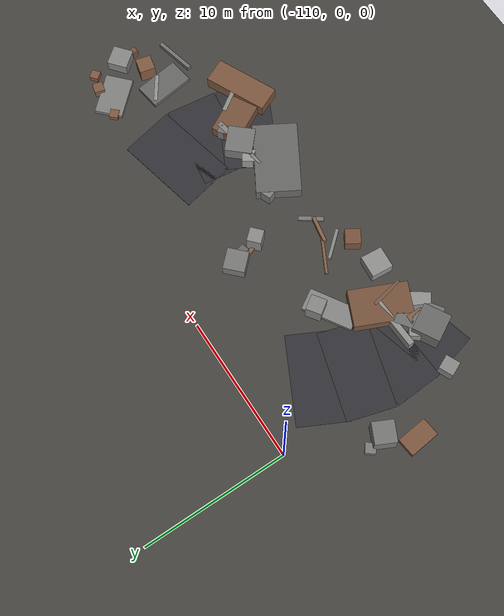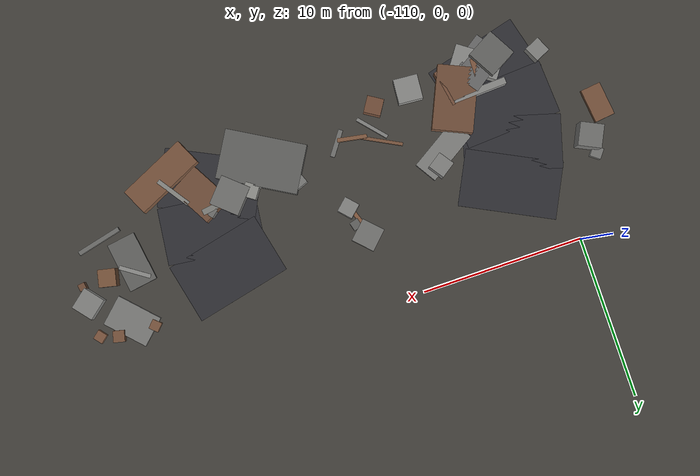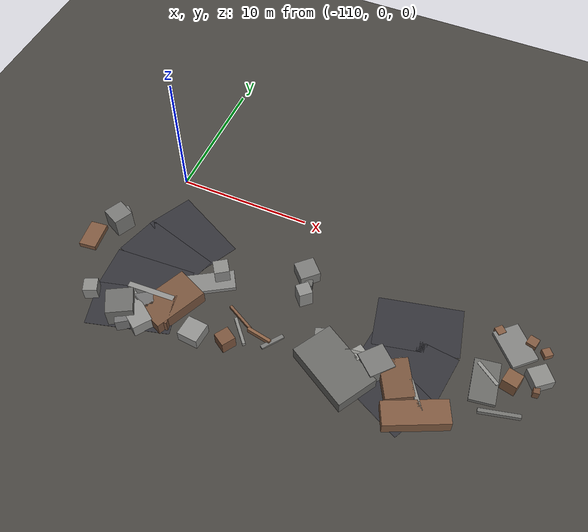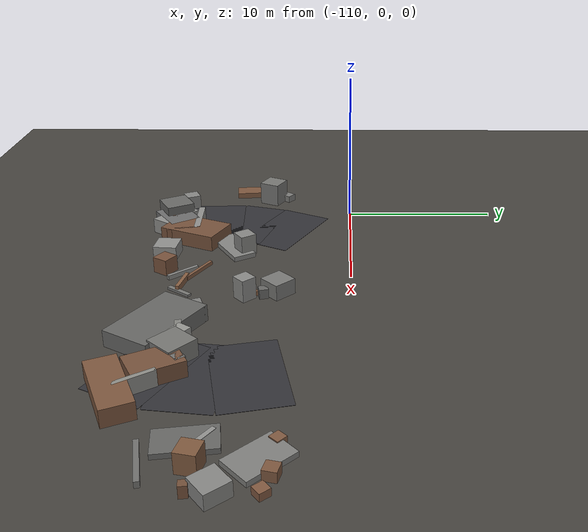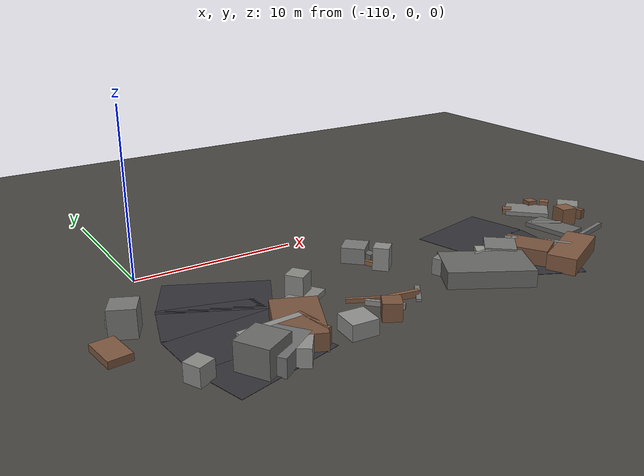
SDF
<sdf version="1.6">
 <world name="navitas_arena">
  <model name="ground_plane">
   <static>true</static>
   <link name="link">
    <collision name="collision">
     <geometry><plane><normal>0 0 1</normal><size>400 400</size></plane></geometry>
     <surface><friction><ode><mu>0.820</mu><mu2>0.820</mu2></ode></friction></surface>
    </collision>
    <visual name="visual">
     <cast_shadows>false</cast_shadows>
     <geometry><plane><normal>0 0 1</normal><size>400 400</size></plane></geometry>
     <material><ambient>0.280 0.270 0.250 1</ambient><diffuse>0.280 0.270 0.250 1</diffuse></material>
    </visual>
   </link>
  </model>
  <model name="road_kolay_1_6">
   <static>true</static>
   <pose>-107.912 -11.639 0.040 0 0 1.829</pose>
   <link name="link">
    <collision name="col"><geometry><box><size>3.409 6.000 0.020</size></box></geometry></collision>
    <visual name="vis">
     <geometry><box><size>3.409 6.000 0.020</size></box></geometry>
     <material><ambient>0.20 0.20 0.22 1</ambient><diffuse>0.20 0.20 0.22 1</diffuse></material>
    </visual>
   </link>
  </model>
  <model name="road_kolay_1_7">
   <static>true</static>
   <pose>-108.301 -9.213 0.040 0 0 1.628</pose>
   <link name="link">
    <collision name="col"><geometry><box><size>3.330 6.000 0.020</size></box></geometry></collision>
    <visual name="vis">
     <geometry><box><size>3.330 6.000 0.020</size></box></geometry>
     <material><ambient>0.20 0.20 0.22 1</ambient><diffuse>0.20 0.20 0.22 1</diffuse></material>
    </visual>
   </link>
  </model>
  <model name="road_kolay_1_8">
   <static>true</static>
   <pose>-108.031 -6.833 0.040 0 0 1.288</pose>
   <link name="link">
    <collision name="col"><geometry><box><size>3.330 6.000 0.020</size></box></geometry></collision>
    <visual name="vis">
     <geometry><box><size>3.330 6.000 0.020</size></box></geometry>
     <material><ambient>0.20 0.20 0.22 1</ambient><diffuse>0.20 0.20 0.22 1</diffuse></material>
    </visual>
   </link>
  </model>
  <model name="road_kolay_1_9">
   <static>true</static>
   <pose>-107.102 -4.500 0.040 0 0 1.102</pose>
   <link name="link">
    <collision name="col"><geometry><box><size>3.515 6.000 0.020</size></box></geometry></collision>
    <visual name="vis">
     <geometry><box><size>3.515 6.000 0.020</size></box></geometry>
     <material><ambient>0.20 0.20 0.22 1</ambient><diffuse>0.20 0.20 0.22 1</diffuse></material>
    </visual>
   </link>
  </model>
  <model name="road_kolay_2_4">
   <static>true</static>
   <pose>-89.827 -10.426 0.040 0 0 1.113</pose>
   <link name="link">
    <collision name="col"><geometry><box><size>3.642 6.000 0.020</size></box></geometry></collision>
    <visual name="vis">
     <geometry><box><size>3.642 6.000 0.020</size></box></geometry>
     <material><ambient>0.20 0.20 0.22 1</ambient><diffuse>0.20 0.20 0.22 1</diffuse></material>
    </visual>
   </link>
  </model>
  <model name="road_kolay_2_5">
   <static>true</static>
   <pose>-89.065 -7.898 0.040 0 0 1.451</pose>
   <link name="link">
    <collision name="col"><geometry><box><size>3.514 6.000 0.020</size></box></geometry></collision>
    <visual name="vis">
     <geometry><box><size>3.514 6.000 0.020</size></box></geometry>
     <material><ambient>0.20 0.20 0.22 1</ambient><diffuse>0.20 0.20 0.22 1</diffuse></material>
    </visual>
   </link>
  </model>
  <model name="road_kolay_2_6">
   <static>true</static>
   <pose>-89.223 -5.200 0.040 0 0 1.792</pose>
   <link name="link">
    <collision name="col"><geometry><box><size>3.770 6.000 0.020</size></box></geometry></collision>
    <visual name="vis">
     <geometry><box><size>3.770 6.000 0.020</size></box></geometry>
     <material><ambient>0.20 0.20 0.22 1</ambient><diffuse>0.20 0.20 0.22 1</diffuse></material>
    </visual>
   </link>
  </model>
  <model name="blk_kolay_1_0_0">
   <static>true</static>
   <pose>-107.466 -12.030 0.500 0 0 0.603</pose>
   <link name="link">
    <collision name="col"><geometry><box><size>2.747 2.083 1.000</size></box></geometry></collision>
    <visual name="vis">
     <geometry><box><size>2.747 2.083 1.000</size></box></geometry>
     <material><ambient>0.44 0.44 0.44 1</ambient><diffuse>0.44 0.44 0.44 1</diffuse></material>
    </visual>
   </link>
  </model>
  <model name="blk_kolay_1_0_2">
   <static>true</static>
   <pose>-105.107 -11.199 0.500 0 0 1.743</pose>
   <link name="link">
    <collision name="col"><geometry><box><size>2.251 0.246 1.000</size></box></geometry></collision>
    <visual name="vis">
     <geometry><box><size>2.251 0.246 1.000</size></box></geometry>
     <material><ambient>0.49 0.34 0.25 1</ambient><diffuse>0.49 0.34 0.25 1</diffuse></material>
    </visual>
   </link>
  </model>
  <model name="blk_kolay_1_0_3">
   <static>true</static>
   <pose>-107.616 -11.819 0.500 0 0 1.541</pose>
   <link name="link">
    <collision name="col"><geometry><box><size>1.082 1.082 1.000</size></box></geometry></collision>
    <visual name="vis">
     <geometry><box><size>1.082 1.082 1.000</size></box></geometry>
     <material><ambient>0.53 0.37 0.27 1</ambient><diffuse>0.53 0.37 0.27 1</diffuse></material>
    </visual>
   </link>
  </model>
  <model name="blk_kolay_1_0_4">
   <static>true</static>
   <pose>-111.173 -11.648 0.500 0 0 0.430</pose>
   <link name="link">
    <collision name="col"><geometry><box><size>0.993 0.993 1.000</size></box></geometry></collision>
    <visual name="vis">
     <geometry><box><size>0.993 0.993 1.000</size></box></geometry>
     <material><ambient>0.54 0.54 0.53 1</ambient><diffuse>0.54 0.54 0.53 1</diffuse></material>
    </visual>
   </link>
  </model>
  <model name="blk_kolay_1_0_5">
   <static>true</static>
   <pose>-107.015 -10.429 0.500 0 0 0.044</pose>
   <link name="link">
    <collision name="col"><geometry><box><size>3.448 0.409 1.000</size></box></geometry></collision>
    <visual name="vis">
     <geometry><box><size>3.448 0.409 1.000</size></box></geometry>
     <material><ambient>0.57 0.57 0.56 1</ambient><diffuse>0.57 0.57 0.56 1</diffuse></material>
    </visual>
   </link>
  </model>
  <model name="blk_kolay_1_0_6">
   <static>true</static>
   <pose>-107.442 -12.112 0.500 0 0 2.524</pose>
   <link name="link">
    <collision name="col"><geometry><box><size>2.960 1.422 1.000</size></box></geometry></collision>
    <visual name="vis">
     <geometry><box><size>2.960 1.422 1.000</size></box></geometry>
     <material><ambient>0.57 0.57 0.56 1</ambient><diffuse>0.57 0.57 0.56 1</diffuse></material>
    </visual>
   </link>
  </model>
  <model name="blk_kolay_1_0_7">
   <static>true</static>
   <pose>-105.522 -10.430 0.500 0 0 1.151</pose>
   <link name="link">
    <collision name="col"><geometry><box><size>3.960 2.487 1.000</size></box></geometry></collision>
    <visual name="vis">
     <geometry><box><size>3.960 2.487 1.000</size></box></geometry>
     <material><ambient>0.47 0.33 0.24 1</ambient><diffuse>0.47 0.33 0.24 1</diffuse></material>
    </visual>
   </link>
  </model>
  <model name="blk_kolay_1_0_8">
   <static>true</static>
   <pose>-108.389 -12.230 0.790 0 0 0.513</pose>
   <link name="link">
    <collision name="col"><geometry><box><size>1.889 1.889 1.580</size></box></geometry></collision>
    <visual name="vis">
     <geometry><box><size>1.889 1.889 1.580</size></box></geometry>
     <material><ambient>0.42 0.42 0.41 1</ambient><diffuse>0.42 0.42 0.41 1</diffuse></material>
    </visual>
   </link>
  </model>
  <model name="blk_kolay_2_0_0">
   <static>true</static>
   <pose>-92.080 -9.148 0.500 0 0 2.538</pose>
   <link name="link">
    <collision name="col"><geometry><box><size>0.883 0.883 1.000</size></box></geometry></collision>
    <visual name="vis">
     <geometry><box><size>0.883 0.883 1.000</size></box></geometry>
     <material><ambient>0.60 0.60 0.58 1</ambient><diffuse>0.60 0.60 0.58 1</diffuse></material>
    </visual>
   </link>
  </model>
  <model name="blk_kolay_2_0_1">
   <static>true</static>
   <pose>-89.170 -9.912 0.500 0 0 2.079</pose>
   <link name="link">
    <collision name="col"><geometry><box><size>2.839 1.976 1.000</size></box></geometry></collision>
    <visual name="vis">
     <geometry><box><size>2.839 1.976 1.000</size></box></geometry>
     <material><ambient>0.47 0.33 0.24 1</ambient><diffuse>0.47 0.33 0.24 1</diffuse></material>
    </visual>
   </link>
  </model>
  <model name="blk_kolay_2_0_2">
   <static>true</static>
   <pose>-89.441 -8.740 0.500 0 0 2.241</pose>
   <link name="link">
    <collision name="col"><geometry><box><size>0.587 0.587 1.000</size></box></geometry></collision>
    <visual name="vis">
     <geometry><box><size>0.587 0.587 1.000</size></box></geometry>
     <material><ambient>0.46 0.46 0.45 1</ambient><diffuse>0.46 0.46 0.45 1</diffuse></material>
    </visual>
   </link>
  </model>
  <model name="blk_kolay_2_0_4">
   <static>true</static>
   <pose>-90.811 -9.279 0.554 0 0 2.414</pose>
   <link name="link">
    <collision name="col"><geometry><box><size>1.856 1.856 1.108</size></box></geometry></collision>
    <visual name="vis">
     <geometry><box><size>1.856 1.856 1.108</size></box></geometry>
     <material><ambient>0.47 0.47 0.46 1</ambient><diffuse>0.47 0.47 0.46 1</diffuse></material>
    </visual>
   </link>
  </model>
  <model name="blk_kolay_2_0_5">
   <static>true</static>
   <pose>-90.971 -9.099 0.500 0 0 0.135</pose>
   <link name="link">
    <collision name="col"><geometry><box><size>4.091 0.365 1.000</size></box></geometry></collision>
    <visual name="vis">
     <geometry><box><size>4.091 0.365 1.000</size></box></geometry>
     <material><ambient>0.53 0.53 0.51 1</ambient><diffuse>0.53 0.53 0.51 1</diffuse></material>
    </visual>
   </link>
  </model>
  <model name="blk_kolay_2_0_6">
   <static>true</static>
   <pose>-87.655 -10.543 0.500 0 0 2.174</pose>
   <link name="link">
    <collision name="col"><geometry><box><size>2.273 0.274 1.000</size></box></geometry></collision>
    <visual name="vis">
     <geometry><box><size>2.273 0.274 1.000</size></box></geometry>
     <material><ambient>0.56 0.56 0.54 1</ambient><diffuse>0.56 0.56 0.54 1</diffuse></material>
    </visual>
   </link>
  </model>
  <model name="blk_kolay_2_0_7">
   <static>true</static>
   <pose>-87.249 -11.677 0.500 0 0 0.437</pose>
   <link name="link">
    <collision name="col"><geometry><box><size>4.437 1.712 1.000</size></box></geometry></collision>
    <visual name="vis">
     <geometry><box><size>4.437 1.712 1.000</size></box></geometry>
     <material><ambient>0.50 0.35 0.25 1</ambient><diffuse>0.50 0.35 0.25 1</diffuse></material>
    </visual>
   </link>
  </model>
  <model name="blk_kolay_2_0_8">
   <static>true</static>
   <pose>-93.241 -10.618 0.500 0 0 2.614</pose>
   <link name="link">
    <collision name="col"><geometry><box><size>4.998 3.035 1.000</size></box></geometry></collision>
    <visual name="vis">
     <geometry><box><size>4.998 3.035 1.000</size></box></geometry>
     <material><ambient>0.41 0.41 0.40 1</ambient><diffuse>0.41 0.41 0.40 1</diffuse></material>
    </visual>
   </link>
  </model>
  <model name="deb_kolay_1">
   <static>true</static>
   <pose>-100.731 -11.601 0.508 0 0 2.578</pose>
   <link name="link">
    <collision name="col"><geometry><box><size>1.034 1.034 1.016</size></box></geometry></collision>
    <visual name="vis">
     <geometry><box><size>1.034 1.034 1.016</size></box></geometry>
     <material><ambient>0.48 0.33 0.24 1</ambient><diffuse>0.48 0.33 0.24 1</diffuse></material>
    </visual>
   </link>
  </model>
  <model name="deb_kolay_17">
   <static>true</static>
   <pose>-97.297 -6.266 0.692 0 0 2.311</pose>
   <link name="link">
    <collision name="col"><geometry><box><size>0.957 0.957 1.384</size></box></geometry></collision>
    <visual name="vis">
     <geometry><box><size>0.957 0.957 1.384</size></box></geometry>
     <material><ambient>0.55 0.55 0.54 1</ambient><diffuse>0.55 0.55 0.54 1</diffuse></material>
    </visual>
   </link>
  </model>
  <model name="deb_kolay_27">
   <static>true</static>
   <pose>-112.613 -4.624 0.232 0 0 0.917</pose>
   <link name="link">
    <collision name="col"><geometry><box><size>0.674 0.674 0.465</size></box></geometry></collision>
    <visual name="vis">
     <geometry><box><size>0.674 0.674 0.465</size></box></geometry>
     <material><ambient>0.49 0.49 0.48 1</ambient><diffuse>0.49 0.49 0.48 1</diffuse></material>
    </visual>
   </link>
  </model>
  <model name="deb_kolay_33">
   <static>true</static>
   <pose>-80.631 -6.961 0.322 0 0 0.145</pose>
   <link name="link">
    <collision name="col"><geometry><box><size>0.419 0.419 0.644</size></box></geometry></collision>
    <visual name="vis">
     <geometry><box><size>0.419 0.419 0.644</size></box></geometry>
     <material><ambient>0.46 0.32 0.23 1</ambient><diffuse>0.46 0.32 0.23 1</diffuse></material>
    </visual>
   </link>
  </model>
  <model name="deb_kolay_35">
   <static>true</static>
   <pose>-84.007 -3.347 0.179 0 0 0.812</pose>
   <link name="link">
    <collision name="col"><geometry><box><size>0.604 0.604 0.357</size></box></geometry></collision>
    <visual name="vis">
     <geometry><box><size>0.604 0.604 0.357</size></box></geometry>
     <material><ambient>0.51 0.36 0.26 1</ambient><diffuse>0.51 0.36 0.26 1</diffuse></material>
    </visual>
   </link>
  </model>
  <model name="deb_kolay_40">
   <static>true</static>
   <pose>-82.392 -9.271 0.168 0 0 0.236</pose>
   <link name="link">
    <collision name="col"><geometry><box><size>2.805 0.263 0.336</size></box></geometry></collision>
    <visual name="vis">
     <geometry><box><size>2.805 0.263 0.336</size></box></geometry>
     <material><ambient>0.45 0.45 0.44 1</ambient><diffuse>0.45 0.45 0.44 1</diffuse></material>
    </visual>
   </link>
  </model>
  <model name="deb_kolay_51">
   <static>true</static>
   <pose>-81.763 -3.447 0.284 0 0 1.338</pose>
   <link name="link">
    <collision name="col"><geometry><box><size>0.702 0.702 0.569</size></box></geometry></collision>
    <visual name="vis">
     <geometry><box><size>0.702 0.702 0.569</size></box></geometry>
     <material><ambient>0.50 0.35 0.25 1</ambient><diffuse>0.50 0.35 0.25 1</diffuse></material>
    </visual>
   </link>
  </model>
  <model name="deb_kolay_54">
   <static>true</static>
   <pose>-100.235 -10.441 0.146 0 0 2.290</pose>
   <link name="link">
    <collision name="col"><geometry><box><size>2.135 0.214 0.292</size></box></geometry></collision>
    <visual name="vis">
     <geometry><box><size>2.135 0.214 0.292</size></box></geometry>
     <material><ambient>0.54 0.54 0.53 1</ambient><diffuse>0.54 0.54 0.53 1</diffuse></material>
    </visual>
   </link>
  </model>
  <model name="deb_kolay_56">
   <static>true</static>
   <pose>-94.748 -8.897 0.493 0 0 0.368</pose>
   <link name="link">
    <collision name="col"><geometry><box><size>1.126 1.126 0.985</size></box></geometry></collision>
    <visual name="vis">
     <geometry><box><size>1.126 1.126 0.985</size></box></geometry>
     <material><ambient>0.50 0.50 0.49 1</ambient><diffuse>0.50 0.50 0.49 1</diffuse></material>
    </visual>
   </link>
  </model>
  <model name="deb_kolay_58">
   <static>true</static>
   <pose>-100.552 -9.505 0.124 0 0 2.655</pose>
   <link name="link">
    <collision name="col"><geometry><box><size>2.565 0.190 0.248</size></box></geometry></collision>
    <visual name="vis">
     <geometry><box><size>2.565 0.190 0.248</size></box></geometry>
     <material><ambient>0.51 0.36 0.26 1</ambient><diffuse>0.51 0.36 0.26 1</diffuse></material>
    </visual>
   </link>
  </model>
  <model name="deb_kolay_62">
   <static>true</static>
   <pose>-82.764 -4.062 0.146 0 0 2.331</pose>
   <link name="link">
    <collision name="col"><geometry><box><size>2.878 1.918 0.291</size></box></geometry></collision>
    <visual name="vis">
     <geometry><box><size>2.878 1.918 0.291</size></box></geometry>
     <material><ambient>0.51 0.51 0.50 1</ambient><diffuse>0.51 0.51 0.50 1</diffuse></material>
    </visual>
   </link>
  </model>
  <model name="deb_kolay_66">
   <static>true</static>
   <pose>-97.893 -10.260 0.076 0 0 0.947</pose>
   <link name="link">
    <collision name="col"><geometry><box><size>1.715 0.284 0.151</size></box></geometry></collision>
    <visual name="vis">
     <geometry><box><size>1.715 0.284 0.151</size></box></geometry>
     <material><ambient>0.47 0.47 0.46 1</ambient><diffuse>0.47 0.47 0.46 1</diffuse></material>
    </visual>
   </link>
  </model>
  <model name="deb_kolay_67">
   <static>true</static>
   <pose>-97.893 -4.353 0.487 0 0 0.770</pose>
   <link name="link">
    <collision name="col"><geometry><box><size>1.453 1.453 0.975</size></box></geometry></collision>
    <visual name="vis">
     <geometry><box><size>1.453 1.453 0.975</size></box></geometry>
     <material><ambient>0.48 0.48 0.47 1</ambient><diffuse>0.48 0.48 0.47 1</diffuse></material>
    </visual>
   </link>
  </model>
  <model name="deb_kolay_77">
   <static>true</static>
   <pose>-98.881 -10.238 0.188 0 0 2.964</pose>
   <link name="link">
    <collision name="col"><geometry><box><size>1.821 0.230 0.375</size></box></geometry></collision>
    <visual name="vis">
     <geometry><box><size>1.821 0.230 0.375</size></box></geometry>
     <material><ambient>0.54 0.38 0.27 1</ambient><diffuse>0.54 0.38 0.27 1</diffuse></material>
    </visual>
   </link>
  </model>
  <model name="deb_kolay_79">
   <static>true</static>
   <pose>-82.293 -6.972 0.563 0 0 1.355</pose>
   <link name="link">
    <collision name="col"><geometry><box><size>1.066 1.066 1.126</size></box></geometry></collision>
    <visual name="vis">
     <geometry><box><size>1.066 1.066 1.126</size></box></geometry>
     <material><ambient>0.51 0.36 0.25 1</ambient><diffuse>0.51 0.36 0.25 1</diffuse></material>
    </visual>
   </link>
  </model>
  <model name="deb_kolay_82">
   <static>true</static>
   <pose>-80.669 -3.787 0.206 0 0 0.685</pose>
   <link name="link">
    <collision name="col"><geometry><box><size>0.603 0.603 0.411</size></box></geometry></collision>
    <visual name="vis">
     <geometry><box><size>0.603 0.603 0.411</size></box></geometry>
     <material><ambient>0.52 0.36 0.26 1</ambient><diffuse>0.52 0.36 0.26 1</diffuse></material>
    </visual>
   </link>
  </model>
  <model name="deb_kolay_94">
   <static>true</static>
   <pose>-97.404 -5.191 0.301 0 0 0.264</pose>
   <link name="link">
    <collision name="col"><geometry><box><size>0.556 0.556 0.602</size></box></geometry></collision>
    <visual name="vis">
     <geometry><box><size>0.556 0.556 0.602</size></box></geometry>
     <material><ambient>0.41 0.41 0.40 1</ambient><diffuse>0.41 0.41 0.40 1</diffuse></material>
    </visual>
   </link>
  </model>
  <model name="deb_kolay_95">
   <static>true</static>
   <pose>-113.678 -7.482 0.195 0 0 1.683</pose>
   <link name="link">
    <collision name="col"><geometry><box><size>2.096 1.258 0.389</size></box></geometry></collision>
    <visual name="vis">
     <geometry><box><size>2.096 1.258 0.389</size></box></geometry>
     <material><ambient>0.50 0.35 0.25 1</ambient><diffuse>0.50 0.35 0.25 1</diffuse></material>
    </visual>
   </link>
  </model>
  <model name="deb_kolay_102">
   <static>true</static>
   <pose>-103.874 -7.721 0.156 0 0 0.556</pose>
   <link name="link">
    <collision name="col"><geometry><box><size>3.460 1.488 0.312</size></box></geometry></collision>
    <visual name="vis">
     <geometry><box><size>3.460 1.488 0.312</size></box></geometry>
     <material><ambient>0.53 0.53 0.52 1</ambient><diffuse>0.53 0.53 0.52 1</diffuse></material>
    </visual>
   </link>
  </model>
  <model name="deb_kolay_108">
   <static>true</static>
   <pose>-83.879 -7.443 0.144 0 0 1.720</pose>
   <link name="link">
    <collision name="col"><geometry><box><size>3.108 1.773 0.288</size></box></geometry></collision>
    <visual name="vis">
     <geometry><box><size>3.108 1.773 0.288</size></box></geometry>
     <material><ambient>0.41 0.41 0.40 1</ambient><diffuse>0.41 0.41 0.40 1</diffuse></material>
    </visual>
   </link>
  </model>
  <model name="deb_kolay_126">
   <static>true</static>
   <pose>-80.672 -5.880 0.408 0 0 0.687</pose>
   <link name="link">
    <collision name="col"><geometry><box><size>1.392 1.392 0.816</size></box></geometry></collision>
    <visual name="vis">
     <geometry><box><size>1.392 1.392 0.816</size></box></geometry>
     <material><ambient>0.54 0.54 0.53 1</ambient><diffuse>0.54 0.54 0.53 1</diffuse></material>
    </visual>
   </link>
  </model>
  <model name="deb_kolay_129">
   <static>true</static>
   <pose>-112.407 -5.687 0.789 0 0 2.687</pose>
   <link name="link">
    <collision name="col"><geometry><box><size>1.435 1.435 1.577</size></box></geometry></collision>
    <visual name="vis">
     <geometry><box><size>1.435 1.435 1.577</size></box></geometry>
     <material><ambient>0.47 0.47 0.46 1</ambient><diffuse>0.47 0.47 0.46 1</diffuse></material>
    </visual>
   </link>
  </model>
  <model name="deb_kolay_133">
   <static>true</static>
   <pose>-97.773 -5.238 0.134 0 0 1.905</pose>
   <link name="link">
    <collision name="col"><geometry><box><size>2.837 0.255 0.268</size></box></geometry></collision>
    <visual name="vis">
     <geometry><box><size>2.837 0.255 0.268</size></box></geometry>
     <material><ambient>0.55 0.38 0.27 1</ambient><diffuse>0.55 0.38 0.27 1</diffuse></material>
    </visual>
   </link>
  </model>
  <model name="deb_kolay_138">
   <static>true</static>
   <pose>-83.861 -6.823 0.154 0 0 2.539</pose>
   <link name="link">
    <collision name="col"><geometry><box><size>1.980 0.255 0.309</size></box></geometry></collision>
    <visual name="vis">
     <geometry><box><size>1.980 0.255 0.309</size></box></geometry>
     <material><ambient>0.58 0.58 0.57 1</ambient><diffuse>0.58 0.58 0.57 1</diffuse></material>
    </visual>
   </link>
  </model>
  <model name="deb_kolay_141">
   <static>true</static>
   <pose>-103.016 -11.908 0.441 0 0 3.063</pose>
   <link name="link">
    <collision name="col"><geometry><box><size>1.502 1.502 0.882</size></box></geometry></collision>
    <visual name="vis">
     <geometry><box><size>1.502 1.502 0.882</size></box></geometry>
     <material><ambient>0.57 0.57 0.56 1</ambient><diffuse>0.57 0.57 0.56 1</diffuse></material>
    </visual>
   </link>
  </model>
  <model name="deb_kolay_142">
   <static>true</static>
   <pose>-103.382 -6.885 0.700 0 0 0.604</pose>
   <link name="link">
    <collision name="col"><geometry><box><size>1.064 1.064 1.401</size></box></geometry></collision>
    <visual name="vis">
     <geometry><box><size>1.064 1.064 1.401</size></box></geometry>
     <material><ambient>0.54 0.54 0.53 1</ambient><diffuse>0.54 0.54 0.53 1</diffuse></material>
    </visual>
   </link>
  </model>
 </world>
</sdf>
